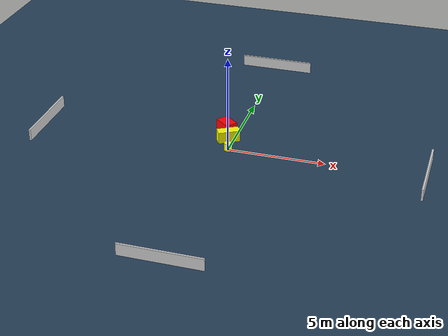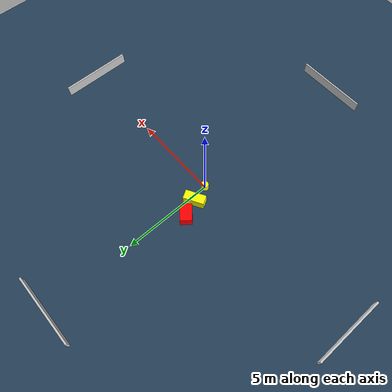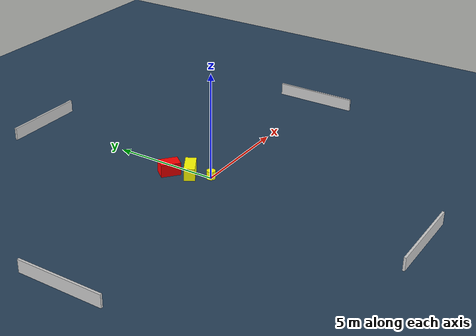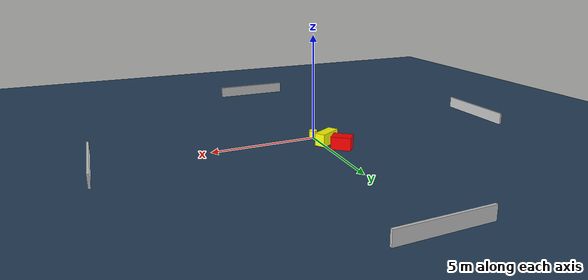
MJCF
<?xml version="1.0" ?>
<mujoco model="generated_environment">
  <option timestep="0.01" integrator="RK4" cone="elliptic"/>
  <default>
    <geom density="1"/>
  </default>
  <asset>
    <texture builtin="gradient" height="3072" name="skybox" rgb1="0.3 0.5 0.7" rgb2="0 0 0" type="skybox" width="512"/>
    <texture builtin="checker" height="300" name="groundplane" rgb1="0.2 0.3 0.4" rgb2="0.1 0.2 0.3" type="2d" width="300"/>
    <material name="groundplane" reflectance="0.2" texrepeat="5 5" texture="groundplane"/>
  </asset>
  <worldbody>
    <light dir="0 0 -1" directional="true" pos="0 0 1.5"/>
    <geom condim="3" friction="0.5 0.005 0.001" material="groundplane" name="floor" pos="0 0 0" size="0 0 0.05" type="plane"/>
    <body name="walls">
      <geom name="wall_1" condim="4" pos="-10.0 0.0 0.3" rgba="0.800000011920929 0.800000011920929 0.800000011920929 1.0" size="0.05 2.0 0.3" type="box"/>
      <geom name="wall_2" condim="4" pos="10.0 0.0 0.3" rgba="0.800000011920929 0.800000011920929 0.800000011920929 1.0" size="0.05 2.0 0.3" type="box"/>
      <geom name="wall_3" condim="4" pos="0.0 -10.0 0.3" rgba="0.800000011920929 0.800000011920929 0.800000011920929 1.0" size="2.0 0.05 0.3" type="box"/>
      <geom name="wall_4" condim="4" pos="0.0 10.0 0.3" rgba="0.800000011920929 0.800000011920929 0.800000011920929 1.0" size="2.0 0.05 0.3" type="box"/>
    </body>
    <body name="robot">
      <joint name="joint_x" type="slide" pos="0 0 0" axis="1 0 0"/>
      <joint name="joint_y" type="slide" pos="0 0 0" axis="0 1 0"/>
      <geom name="robot" type="cylinder" pos="0.0 0.0 0.2" size="0.2 0.2 0.0" mass="5.0" friction="1.0 0.005 0.0001" condim="4" rgba="1.0 1.0 0.0 1.0"/>
    </body>
    <body name="obstacle_1_movable">
      <geom name="obstacle_1_movable" condim="4" pos="-0.2700520683569961 0.945607971427438 0.3" euler="0 0 30.202676388413177" friction="0.0 0.005 0.001" rgba="1.0 1.0 0.0 1.0" size="0.5669232069530299 0.2527937498468584 0.3" type="box" mass="0.1"/>
      <joint type="free"/>
    </body>
    <body name="obstacle_2_static">
      <geom name="obstacle_2_static" condim="4" pos="-0.6252379967743391 1.8441815356638316 0.3" euler="0 0 50.86374482491379" friction="0.0 0.005 0.001" rgba="1.0 0.0 0.0 1.0" size="0.3225816781869216 0.4616008129752297 0.3" type="box"/>
    </body>
  </worldbody>
  <actuator>
    <motor name="actuator_x" joint="joint_x" gear="1" ctrlrange="-1 1"/>
    <motor name="actuator_y" joint="joint_y" gear="1" ctrlrange="-1 1"/>
  </actuator>
</mujoco>
